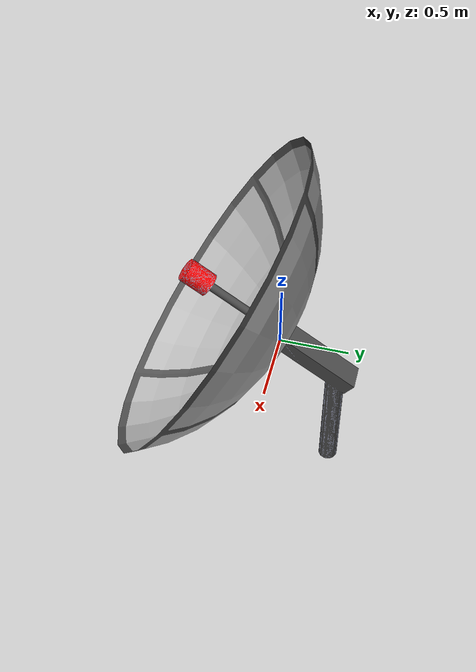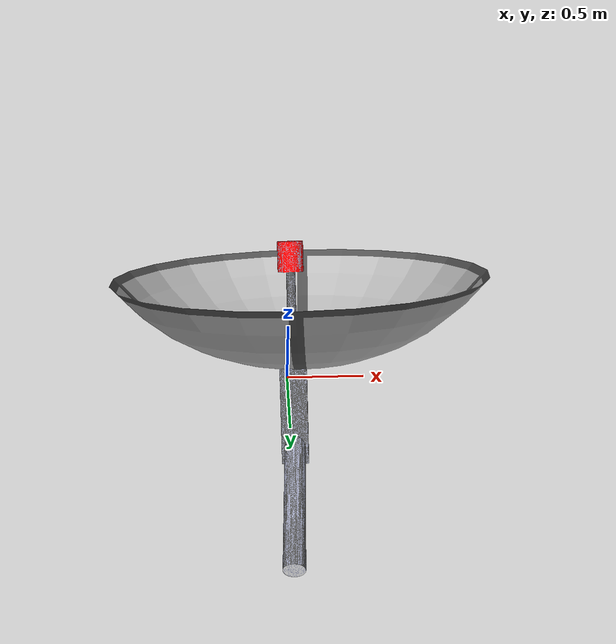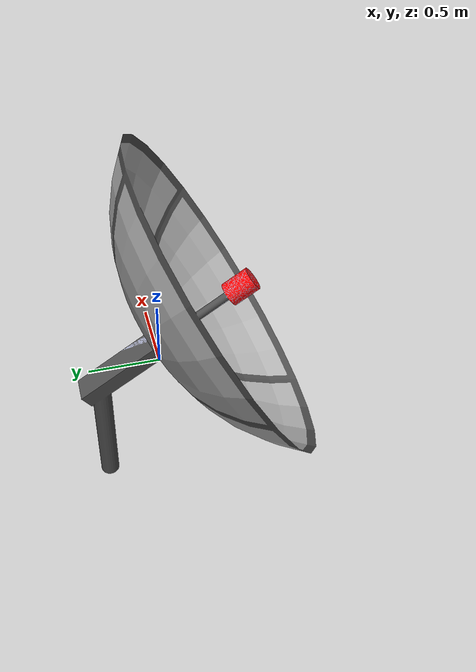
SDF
<?xml version='1.0'?>
<sdf version='1.4'>
    <model name="beacon_v1">
        <link name="beacon">
            <visual name="visual">
                <pose>-1.144 -1.108 -1.19 0 0 0</pose>
                <geometry>
                    <mesh>
                        <uri>model://beacons_gazebo/models/beacon/model.dae</uri>
                        <scale>1 1 1</scale>
                    </mesh>
                </geometry>
            </visual>
            <gravity>0</gravity>
        </link>
        <plugin name="receiver_model_plugin" filename="libbeacon_model_plugin.so">
            <m_rssi>-60</m_rssi>
            <beacon_link>beacon</beacon_link>
        </plugin>
    </model>
</sdf>
